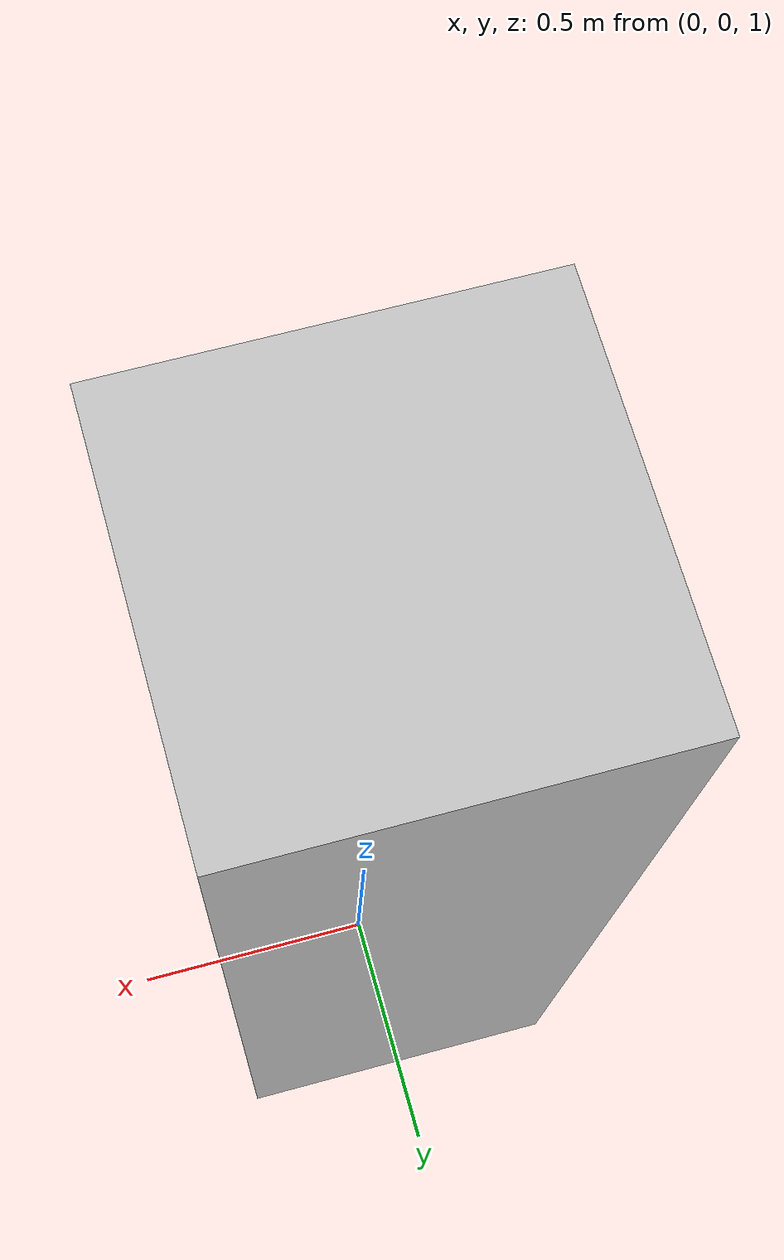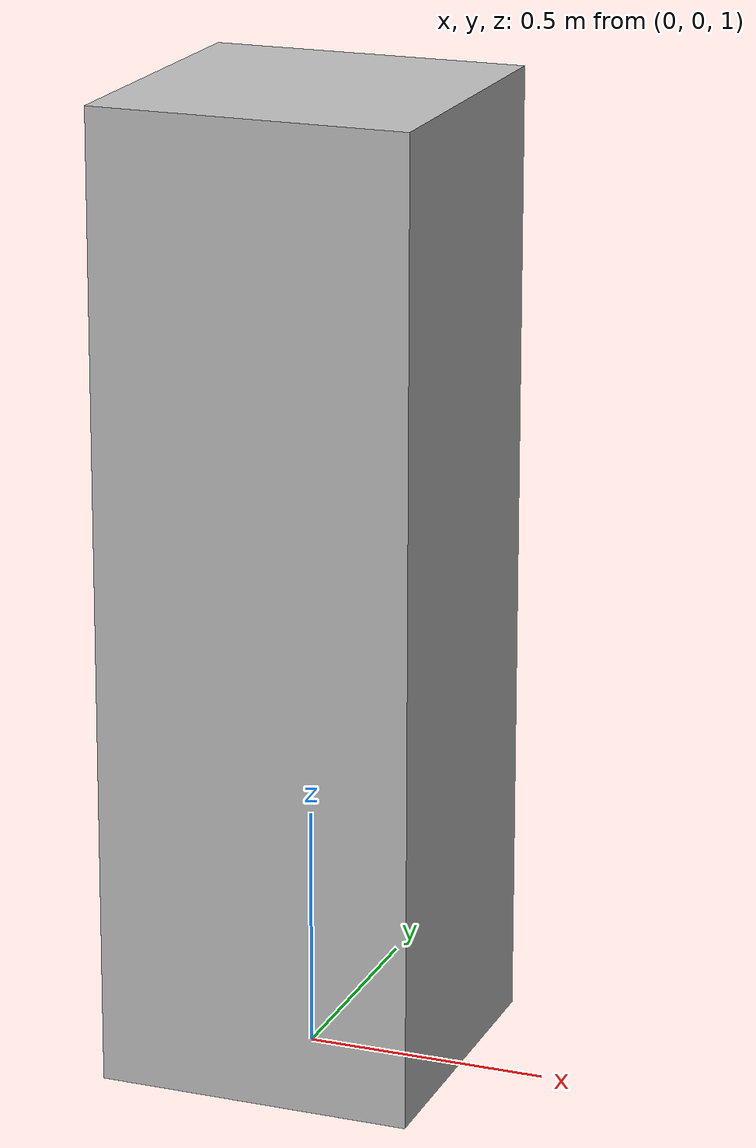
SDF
<?xml version='1.0'?>
<sdf version="1.4">
  <model name="pole">
    <static>true</static>
    <pose>0 0 0 0 0 0</pose>

    <!-- MAIN COLLIDER -->

    <link name="main_block">
      <pose>0 0 2 0 0 0</pose>
      <collision name="collision"><geometry><box><size>.65 .65 4</size></box></geometry></collision>
      <visual name="visual"><geometry><box><size>.65 .65 2</size></box></geometry>
          <material><ambient>.50 .50 .50 1</ambient>
                    <diffuse>.75 .75 .75 1</diffuse></material></visual></link>

  </model>
</sdf>
